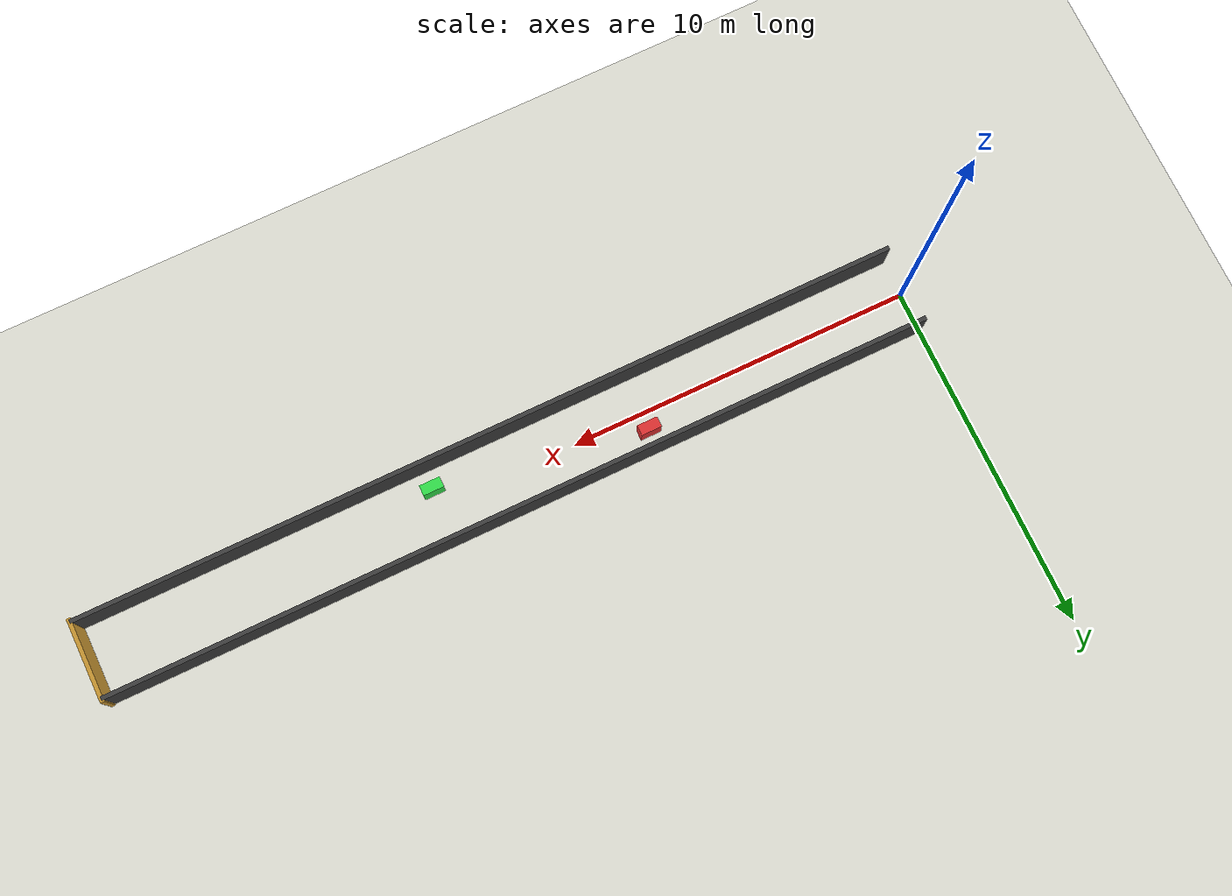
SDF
<?xml version="1.0" ?>
<sdf version="1.8">
  <world name="corridor">

    <plugin filename="gz-sim-physics-system" name="gz::sim::systems::Physics"/>
    <plugin filename="gz-sim-user-commands-system" name="gz::sim::systems::UserCommands"/>
    <plugin filename="gz-sim-scene-broadcaster-system" name="gz::sim::systems::SceneBroadcaster"/>
    <plugin filename="gz-sim-sensors-system" name="gz::sim::systems::Sensors"/>

    <physics name="default" type="ignored">
      <max_step_size>0.001</max_step_size>
      <real_time_factor>1.0</real_time_factor>
    </physics>

    <light name="sun" type="directional">
      <pose>0 0 10 0 0 0</pose>
      <cast_shadows>true</cast_shadows>
      <diffuse>1 1 1 1</diffuse>
      <direction>-0.2 0.25 -1</direction>
    </light>

    <!-- Ground -->
    <model name="ground_plane">
      <static>true</static>
      <link name="link">
        <collision name="collision">
          <geometry><plane><normal>0 0 1</normal><size>80 30</size></plane></geometry>
        </collision>
        <visual name="visual">
          <geometry><plane><normal>0 0 1</normal><size>80 30</size></plane></geometry>
          <material><ambient>0.90 0.90 0.86 1</ambient><diffuse>0.90 0.90 0.86 1</diffuse></material>
        </visual>
      </link>
    </model>

    <!-- Corridor walls: long + colored -->
    <!-- Corridor along X; width ~2.2m -->
    <model name="wall_left">
      <static>true</static>
      <pose>12 1.1 0.6 0 0 0</pose>
      <link name="link">
        <collision name="c"><geometry><box><size>24 0.12 1.2</size></box></geometry></collision>
        <visual name="v">
          <geometry><box><size>24 0.12 1.2</size></box></geometry>
          <material><ambient>0.25 0.25 0.25 1</ambient><diffuse>0.25 0.25 0.25 1</diffuse></material>
        </visual>
      </link>
    </model>

    <model name="wall_right">
      <static>true</static>
      <pose>12 -1.1 0.6 0 0 0</pose>
      <link name="link">
        <collision name="c"><geometry><box><size>24 0.12 1.2</size></box></geometry></collision>
        <visual name="v">
          <geometry><box><size>24 0.12 1.2</size></box></geometry>
          <material><ambient>0.25 0.25 0.25 1</ambient><diffuse>0.25 0.25 0.25 1</diffuse></material>
        </visual>
      </link>
    </model>

    <!-- End wall (goal area) -->
    <model name="end_wall">
      <static>true</static>
      <pose>24 0 0.6 0 0 0</pose>
      <link name="link">
        <collision name="c"><geometry><box><size>0.12 2.4 1.2</size></box></geometry></collision>
        <visual name="v">
          <geometry><box><size>0.12 2.4 1.2</size></box></geometry>
          <material><ambient>0.8 0.6 0.2 1</ambient><diffuse>0.8 0.6 0.2 1</diffuse></material>
        </visual>
      </link>
    </model>

    <!-- A few “gates” to force steering -->
    <model name="gate1">
      <static>true</static>
      <pose>8 0.5 0.3 0 0 0</pose>
      <link name="link">
        <collision name="c"><geometry><box><size>0.6 0.3 0.6</size></box></geometry></collision>
        <visual name="v">
          <geometry><box><size>0.6 0.3 0.6</size></box></geometry>
          <material><ambient>0.9 0.2 0.2 1</ambient><diffuse>0.9 0.2 0.2 1</diffuse></material>
        </visual>
      </link>
    </model>

    <model name="gate2">
      <static>true</static>
      <pose>14 -0.5 0.3 0 0 0</pose>
      <link name="link">
        <collision name="c"><geometry><box><size>0.6 0.3 0.6</size></box></geometry></collision>
        <visual name="v">
          <geometry><box><size>0.6 0.3 0.6</size></box></geometry>
          <material><ambient>0.2 0.9 0.3 1</ambient><diffuse>0.2 0.9 0.3 1</diffuse></material>
        </visual>
      </link>
    </model>

  </world>
</sdf>
